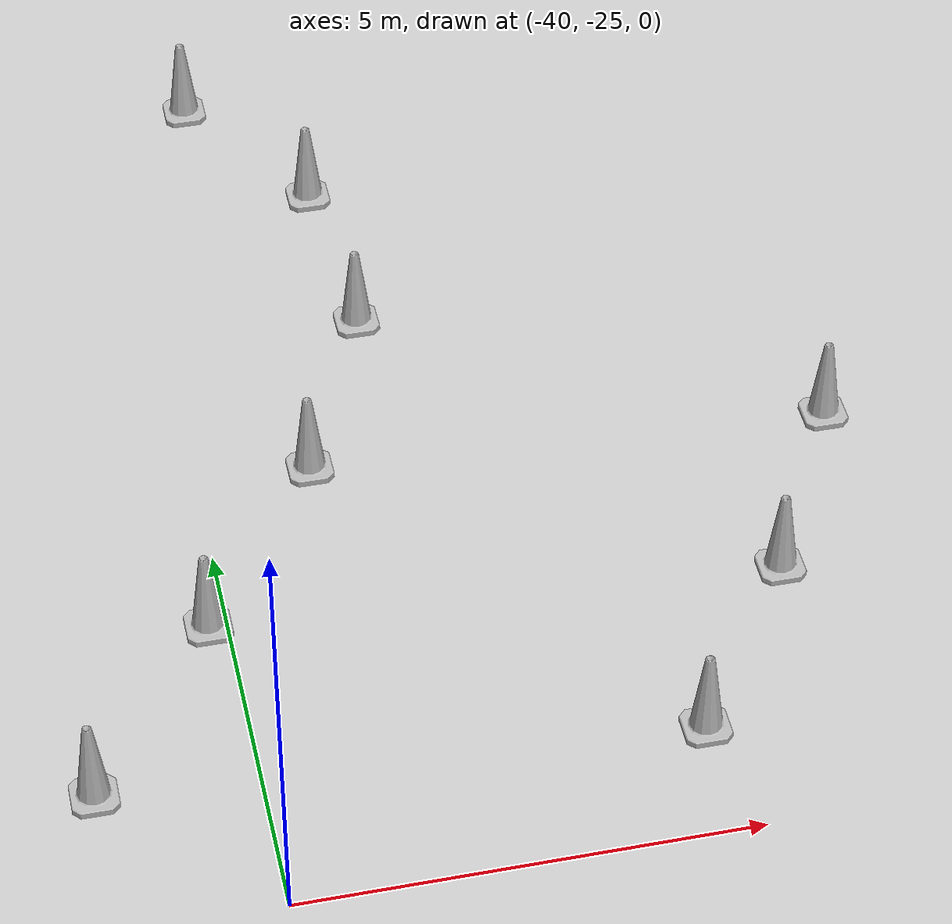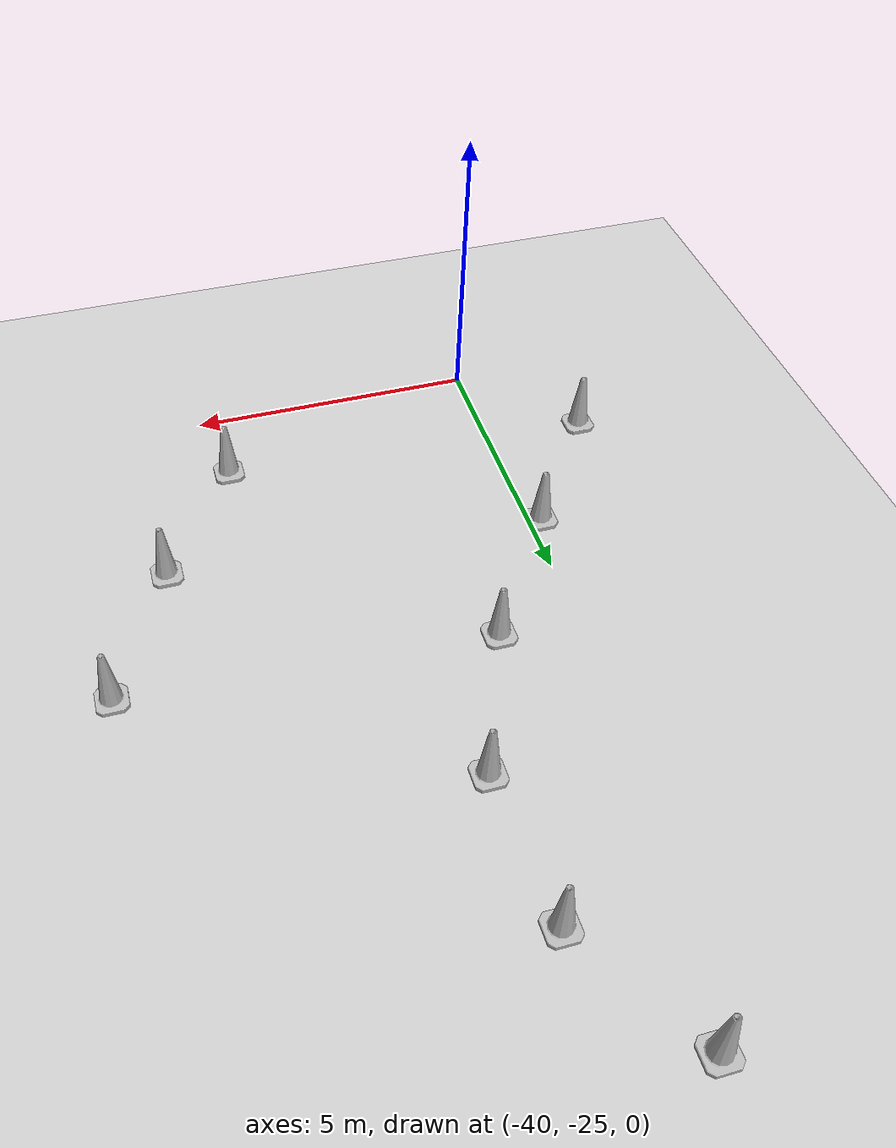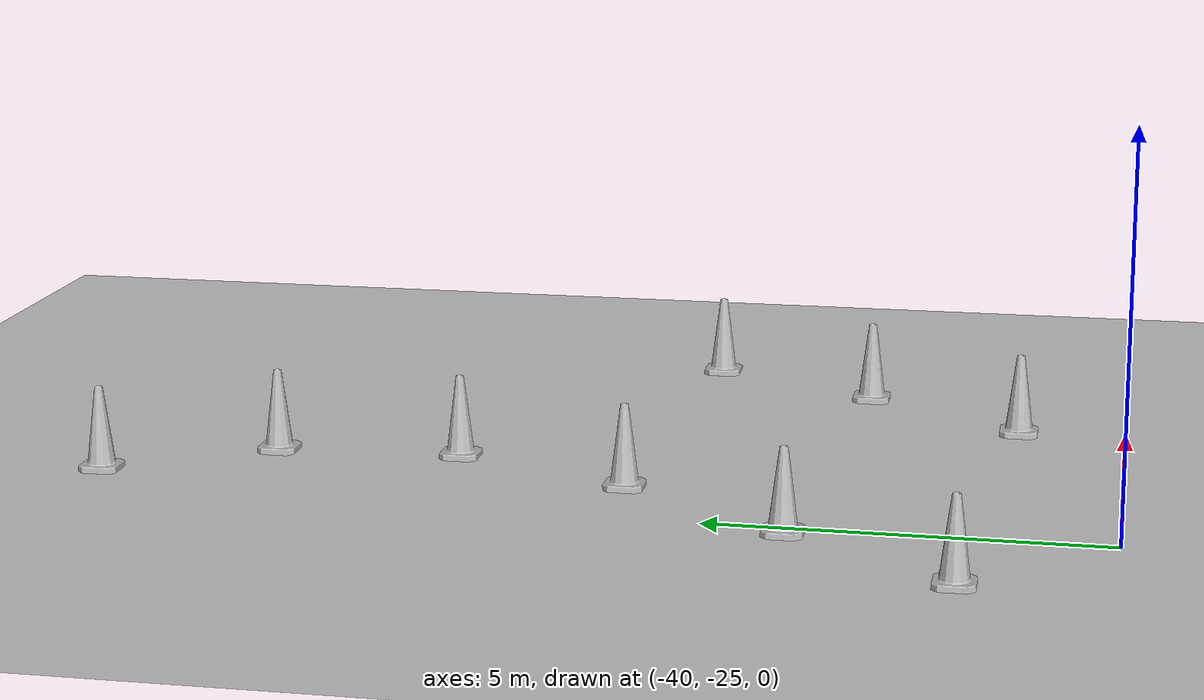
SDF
<sdf version="1.7">
 <world name="default">
  <model name="ground_plane">
   <static>1</static>
   <link name="link">
    <collision name="collision">
     <geometry><plane><normal>0 0 1</normal><size>125 125</size></plane></geometry>
     <surface>
      <contact><collide_bitmask>65535</collide_bitmask></contact>
      <friction><ode><mu>100</mu><mu2>50</mu2></ode></friction>
     </surface>
    </collision>
    <visual name="visual">
     <cast_shadows>0</cast_shadows>
     <geometry><plane><normal>0 0 1</normal><size>125 125</size></plane></geometry>
     <material>
      <script><uri>file://media/materials/scripts/gazebo.material</uri><name>Gazebo/Grey</name></script>
     </material>
    </visual>
   </link>
  </model>
  <model name="Construction Cone 237">
   <link name="link">
    <collision name="collision">
     <geometry>
      <mesh><scale>10 10 10</scale><uri>model://construction_cone/meshes/construction_cone.dae</uri></mesh>
     </geometry>
    </collision>
    <visual name="visual">
     <geometry>
      <mesh><scale>10 10 10</scale><uri>model://construction_cone/meshes/construction_cone.dae</uri></mesh>
     </geometry>
    </visual>
    <inertial>
     <inertia><ixx>1</ixx><ixy>0</ixy><ixz>0</ixz><iyy>1</iyy><iyz>0</iyz><izz>1</izz></inertia>
     <mass>1</mass>
    </inertial>
   </link>
   <pose>-39.11082854188567 -12.069067249267029 0 0 0 0</pose>
  </model>
  <model name="Construction Cone 245">
   <link name="link">
    <collision name="collision">
     <geometry>
      <mesh><scale>10 10 10</scale><uri>model://construction_cone/meshes/construction_cone.dae</uri></mesh>
     </geometry>
    </collision>
    <visual name="visual">
     <geometry>
      <mesh><scale>10 10 10</scale><uri>model://construction_cone/meshes/construction_cone.dae</uri></mesh>
     </geometry>
    </visual>
    <inertial>
     <inertia><ixx>1</ixx><ixy>0</ixy><ixz>0</ixz><iyy>1</iyy><iyz>0</iyz><izz>1</izz></inertia>
     <mass>1</mass>
    </inertial>
   </link>
   <pose>-37.861842527899654 -14.054416899616683 0 0 0 0</pose>
  </model>
  <model name="Construction Cone 257">
   <link name="link">
    <collision name="collision">
     <geometry>
      <mesh><scale>10 10 10</scale><uri>model://construction_cone/meshes/construction_cone.dae</uri></mesh>
     </geometry>
    </collision>
    <visual name="visual">
     <geometry>
      <mesh><scale>10 10 10</scale><uri>model://construction_cone/meshes/construction_cone.dae</uri></mesh>
     </geometry>
    </visual>
    <inertial>
     <inertia><ixx>1</ixx><ixy>0</ixy><ixz>0</ixz><iyy>1</iyy><iyz>0</iyz><izz>1</izz></inertia>
     <mass>1</mass>
    </inertial>
   </link>
   <pose>-37.70475161880874 -16.47214417234396 0 0 0 0</pose>
  </model>
  <model name="Construction Cone 261">
   <link name="link">
    <collision name="collision">
     <geometry>
      <mesh><scale>10 10 10</scale><uri>model://construction_cone/meshes/construction_cone.dae</uri></mesh>
     </geometry>
    </collision>
    <visual name="visual">
     <geometry>
      <mesh><scale>10 10 10</scale><uri>model://construction_cone/meshes/construction_cone.dae</uri></mesh>
     </geometry>
    </visual>
    <inertial>
     <inertia><ixx>1</ixx><ixy>0</ixy><ixz>0</ixz><iyy>1</iyy><iyz>0</iyz><izz>1</izz></inertia>
     <mass>1</mass>
    </inertial>
   </link>
   <pose>-38.690251618808745 -18.834644172343957 0 0 0 0</pose>
  </model>
  <model name="Construction Cone 262">
   <link name="link">
    <collision name="collision">
     <geometry>
      <mesh><scale>10 10 10</scale><uri>model://construction_cone/meshes/construction_cone.dae</uri></mesh>
     </geometry>
    </collision>
    <visual name="visual">
     <geometry>
      <mesh><scale>10 10 10</scale><uri>model://construction_cone/meshes/construction_cone.dae</uri></mesh>
     </geometry>
    </visual>
    <inertial>
     <inertia><ixx>1</ixx><ixy>0</ixy><ixz>0</ixz><iyy>1</iyy><iyz>0</iyz><izz>1</izz></inertia>
     <mass>1</mass>
    </inertial>
   </link>
   <pose>-32.70975161880874 -19.185644172343956 0 0 0 0</pose>
  </model>
  <model name="Construction Cone 265">
   <link name="link">
    <collision name="collision">
     <geometry>
      <mesh><scale>10 10 10</scale><uri>model://construction_cone/meshes/construction_cone.dae</uri></mesh>
     </geometry>
    </collision>
    <visual name="visual">
     <geometry>
      <mesh><scale>10 10 10</scale><uri>model://construction_cone/meshes/construction_cone.dae</uri></mesh>
     </geometry>
    </visual>
    <inertial>
     <inertia><ixx>1</ixx><ixy>0</ixy><ixz>0</ixz><iyy>1</iyy><iyz>0</iyz><izz>1</izz></inertia>
     <mass>1</mass>
    </inertial>
   </link>
   <pose>-40.20593343699056 -21.037598717798502 0 0 0 0</pose>
  </model>
  <model name="Construction Cone 266">
   <link name="link">
    <collision name="collision">
     <geometry>
      <mesh><scale>10 10 10</scale><uri>model://construction_cone/meshes/construction_cone.dae</uri></mesh>
     </geometry>
    </collision>
    <visual name="visual">
     <geometry>
      <mesh><scale>10 10 10</scale><uri>model://construction_cone/meshes/construction_cone.dae</uri></mesh>
     </geometry>
    </visual>
    <inertial>
     <inertia><ixx>1</ixx><ixy>0</ixy><ixz>0</ixz><iyy>1</iyy><iyz>0</iyz><izz>1</izz></inertia>
     <mass>1</mass>
    </inertial>
   </link>
   <pose>-33.87075161880874 -21.46714417234395 0 0 0 0</pose>
  </model>
  <model name="Construction Cone 269">
   <link name="link">
    <collision name="collision">
     <geometry>
      <mesh><scale>10 10 10</scale><uri>model://construction_cone/meshes/construction_cone.dae</uri></mesh>
     </geometry>
    </collision>
    <visual name="visual">
     <geometry>
      <mesh><scale>10 10 10</scale><uri>model://construction_cone/meshes/construction_cone.dae</uri></mesh>
     </geometry>
    </visual>
    <inertial>
     <inertia><ixx>1</ixx><ixy>0</ixy><ixz>0</ixz><iyy>1</iyy><iyz>0</iyz><izz>1</izz></inertia>
     <mass>1</mass>
    </inertial>
   </link>
   <pose>-41.73900161880874 -23.177144172343944 0 0 0 0</pose>
  </model>
  <model name="Construction Cone 270">
   <link name="link">
    <collision name="collision">
     <geometry>
      <mesh><scale>10 10 10</scale><uri>model://construction_cone/meshes/construction_cone.dae</uri></mesh>
     </geometry>
    </collision>
    <visual name="visual">
     <geometry>
      <mesh><scale>10 10 10</scale><uri>model://construction_cone/meshes/construction_cone.dae</uri></mesh>
     </geometry>
    </visual>
    <inertial>
     <inertia><ixx>1</ixx><ixy>0</ixy><ixz>0</ixz><iyy>1</iyy><iyz>0</iyz><izz>1</izz></inertia>
     <mass>1</mass>
    </inertial>
   </link>
   <pose>-35.288251618808744 -23.586644172343966 0 0 0 0</pose>
  </model>
 </world>
</sdf>
